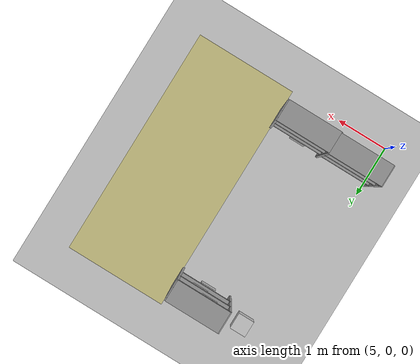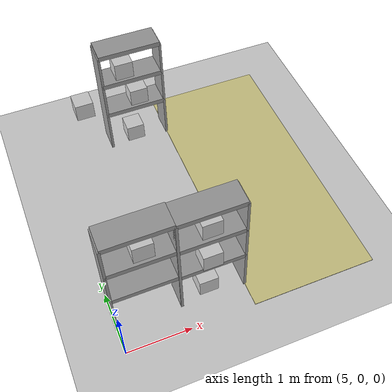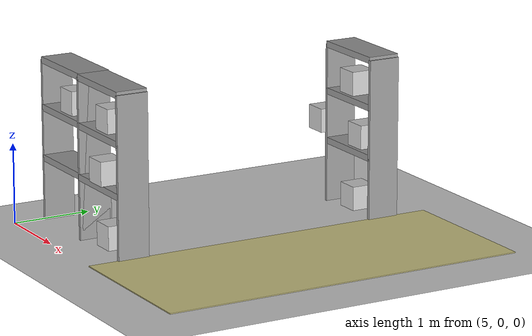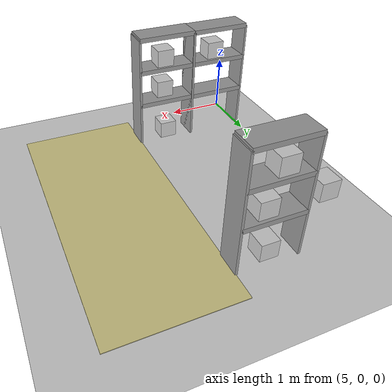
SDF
<sdf version="1.7">
 <world name="default">
  <model name="ground_plane">
   <static>1</static>
   <link name="link">
    <collision name="collision">
     <geometry><plane><normal>0 0 1</normal><size>100 100</size></plane></geometry>
     <surface>
      <contact><collide_bitmask>65535</collide_bitmask></contact>
      <friction><ode><mu>100</mu><mu2>50</mu2></ode></friction>
     </surface>
    </collision>
    <visual name="visual">
     <cast_shadows>0</cast_shadows>
     <geometry><plane><normal>0 0 1</normal><size>100 100</size></plane></geometry>
     <material>
      <script><uri>file://media/materials/scripts/gazebo.material</uri><name>Gazebo/Grey</name></script>
     </material>
    </visual>
   </link>
  </model>
  <model name="Shelf_2_clone">
   <static>1</static>
   <link name="link_3">
    <inertial>
     <mass>1</mass>
     <inertia>
      <ixx>0.166667</ixx>
      <ixy>0</ixy>
      <ixz>0</ixz>
      <iyy>0.166667</iyy>
      <iyz>0</iyz>
      <izz>0.166667</izz>
     </inertia>
    </inertial>
    <pose>-0.5 0 -0.238 0 -0 0</pose>
    <visual name="visual">
     <geometry><box><size>0.04 0.4 2</size></box></geometry>
     <material>
      <lighting>1</lighting>
      <script><uri>file://media/materials/scripts/gazebo.material</uri><name>Gazebo/Grey</name></script>
      <shader type="pixel"><normal_map>__default__</normal_map></shader>
      <ambient>0.3 0.3 0.3 1</ambient>
      <diffuse>0.7 0.7 0.7 1</diffuse>
      <specular>0.01 0.01 0.01 1</specular>
      <emissive>0 0 0 1</emissive>
     </material>
    </visual>
    <collision name="collision">
     <geometry><box><size>0.04 0.4 2</size></box></geometry>
     <surface>
      <friction>
       <ode><mu>1</mu><mu2>1</mu2><fdir1>0 0 0</fdir1><slip1>0</slip1><slip2>0</slip2></ode>
       <torsional>
        <coefficient>1</coefficient>
        <patch_radius>0</patch_radius>
        <surface_radius>0</surface_radius>
        <use_patch_radius>1</use_patch_radius>
        <ode><slip>0</slip></ode>
       </torsional>
      </friction>
      <bounce><restitution_coefficient>0</restitution_coefficient><threshold>1e+06</threshold></bounce>
      <contact>
       <collide_without_contact>0</collide_without_contact>
       <collide_without_contact_bitmask>1</collide_without_contact_bitmask>
       <collide_bitmask>1</collide_bitmask>
       <ode>
        <soft_cfm>0</soft_cfm>
        <soft_erp>0.2</soft_erp>
        <kp>1e+13</kp>
        <kd>1</kd>
        <max_vel>0.01</max_vel>
        <min_depth>0</min_depth>
       </ode>
       <bullet>
        <split_impulse>1</split_impulse>
        <split_impulse_penetration_threshold>-0.01</split_impulse_penetration_threshold>
        <soft_cfm>0</soft_cfm>
        <soft_erp>0.2</soft_erp>
        <kp>1e+13</kp>
        <kd>1</kd>
       </bullet>
      </contact>
     </surface>
    </collision>
   </link>
   <link name="link_3_clone">
    <inertial>
     <mass>1</mass>
     <inertia>
      <ixx>0.166667</ixx>
      <ixy>0</ixy>
      <ixz>0</ixz>
      <iyy>0.166667</iyy>
      <iyz>0</iyz>
      <izz>0.166667</izz>
     </inertia>
    </inertial>
    <pose>0.5 0 -0.238 0 -0 0</pose>
    <visual name="visual">
     <geometry><box><size>0.04 0.4 2</size></box></geometry>
     <material>
      <lighting>1</lighting>
      <script><uri>file://media/materials/scripts/gazebo.material</uri><name>Gazebo/Grey</name></script>
      <shader type="pixel"><normal_map>__default__</normal_map></shader>
      <ambient>0.3 0.3 0.3 1</ambient>
      <diffuse>0.7 0.7 0.7 1</diffuse>
      <specular>0.01 0.01 0.01 1</specular>
      <emissive>0 0 0 1</emissive>
     </material>
    </visual>
    <collision name="collision">
     <geometry><box><size>0.04 0.4 2</size></box></geometry>
     <surface>
      <friction>
       <ode><mu>1</mu><mu2>1</mu2><fdir1>0 0 0</fdir1><slip1>0</slip1><slip2>0</slip2></ode>
       <torsional>
        <coefficient>1</coefficient>
        <patch_radius>0</patch_radius>
        <surface_radius>0</surface_radius>
        <use_patch_radius>1</use_patch_radius>
        <ode><slip>0</slip></ode>
       </torsional>
      </friction>
      <bounce><restitution_coefficient>0</restitution_coefficient><threshold>1e+06</threshold></bounce>
      <contact>
       <collide_without_contact>0</collide_without_contact>
       <collide_without_contact_bitmask>1</collide_without_contact_bitmask>
       <collide_bitmask>1</collide_bitmask>
       <ode>
        <soft_cfm>0</soft_cfm>
        <soft_erp>0.2</soft_erp>
        <kp>1e+13</kp>
        <kd>1</kd>
        <max_vel>0.01</max_vel>
        <min_depth>0</min_depth>
       </ode>
       <bullet>
        <split_impulse>1</split_impulse>
        <split_impulse_penetration_threshold>-0.01</split_impulse_penetration_threshold>
        <soft_cfm>0</soft_cfm>
        <soft_erp>0.2</soft_erp>
        <kp>1e+13</kp>
        <kd>1</kd>
       </bullet>
      </contact>
     </surface>
    </collision>
   </link>
   <link name="link_4">
    <inertial>
     <mass>1</mass>
     <inertia>
      <ixx>0.166667</ixx>
      <ixy>0</ixy>
      <ixz>0</ixz>
      <iyy>0.166667</iyy>
      <iyz>0</iyz>
      <izz>0.166667</izz>
     </inertia>
    </inertial>
    <pose>0 0 -0.458 0 -0 0</pose>
    <visual name="visual">
     <geometry><box><size>1 0.4 0.08</size></box></geometry>
     <material>
      <lighting>1</lighting>
      <script><uri>file://media/materials/scripts/gazebo.material</uri><name>Gazebo/Grey</name></script>
      <shader type="pixel"><normal_map>__default__</normal_map></shader>
      <ambient>0.3 0.3 0.3 1</ambient>
      <diffuse>0.7 0.7 0.7 1</diffuse>
      <specular>0.01 0.01 0.01 1</specular>
      <emissive>0 0 0 1</emissive>
     </material>
    </visual>
    <collision name="collision">
     <geometry><box><size>1 0.4 0.08</size></box></geometry>
     <surface>
      <friction>
       <ode><mu>1</mu><mu2>1</mu2><fdir1>0 0 0</fdir1><slip1>0</slip1><slip2>0</slip2></ode>
       <torsional>
        <coefficient>1</coefficient>
        <patch_radius>0</patch_radius>
        <surface_radius>0</surface_radius>
        <use_patch_radius>1</use_patch_radius>
        <ode><slip>0</slip></ode>
       </torsional>
      </friction>
      <bounce><restitution_coefficient>0</restitution_coefficient><threshold>1e+06</threshold></bounce>
      <contact>
       <collide_without_contact>0</collide_without_contact>
       <collide_without_contact_bitmask>1</collide_without_contact_bitmask>
       <collide_bitmask>1</collide_bitmask>
       <ode>
        <soft_cfm>0</soft_cfm>
        <soft_erp>0.2</soft_erp>
        <kp>1e+13</kp>
        <kd>1</kd>
        <max_vel>0.01</max_vel>
        <min_depth>0</min_depth>
       </ode>
       <bullet>
        <split_impulse>1</split_impulse>
        <split_impulse_penetration_threshold>-0.01</split_impulse_penetration_threshold>
        <soft_cfm>0</soft_cfm>
        <soft_erp>0.2</soft_erp>
        <kp>1e+13</kp>
        <kd>1</kd>
       </bullet>
      </contact>
     </surface>
    </collision>
   </link>
   <link name="link_4_clone">
    <inertial>
     <mass>1</mass>
     <inertia>
      <ixx>0.166667</ixx>
      <ixy>0</ixy>
      <ixz>0</ixz>
      <iyy>0.166667</iyy>
      <iyz>0</iyz>
      <izz>0.166667</izz>
     </inertia>
    </inertial>
    <pose>0 0 0.172 0 -0 0</pose>
    <visual name="visual">
     <geometry><box><size>1 0.4 0.08</size></box></geometry>
     <material>
      <lighting>1</lighting>
      <script><uri>file://media/materials/scripts/gazebo.material</uri><name>Gazebo/Grey</name></script>
      <shader type="pixel"><normal_map>__default__</normal_map></shader>
      <ambient>0.3 0.3 0.3 1</ambient>
      <diffuse>0.7 0.7 0.7 1</diffuse>
      <specular>0.01 0.01 0.01 1</specular>
      <emissive>0 0 0 1</emissive>
     </material>
    </visual>
    <collision name="collision">
     <geometry><box><size>1 0.4 0.08</size></box></geometry>
     <surface>
      <friction>
       <ode><mu>1</mu><mu2>1</mu2><fdir1>0 0 0</fdir1><slip1>0</slip1><slip2>0</slip2></ode>
       <torsional>
        <coefficient>1</coefficient>
        <patch_radius>0</patch_radius>
        <surface_radius>0</surface_radius>
        <use_patch_radius>1</use_patch_radius>
        <ode><slip>0</slip></ode>
       </torsional>
      </friction>
      <bounce><restitution_coefficient>0</restitution_coefficient><threshold>1e+06</threshold></bounce>
      <contact>
       <collide_without_contact>0</collide_without_contact>
       <collide_without_contact_bitmask>1</collide_without_contact_bitmask>
       <collide_bitmask>1</collide_bitmask>
       <ode>
        <soft_cfm>0</soft_cfm>
        <soft_erp>0.2</soft_erp>
        <kp>1e+13</kp>
        <kd>1</kd>
        <max_vel>0.01</max_vel>
        <min_depth>0</min_depth>
       </ode>
       <bullet>
        <split_impulse>1</split_impulse>
        <split_impulse_penetration_threshold>-0.01</split_impulse_penetration_threshold>
        <soft_cfm>0</soft_cfm>
        <soft_erp>0.2</soft_erp>
        <kp>1e+13</kp>
        <kd>1</kd>
       </bullet>
      </contact>
     </surface>
    </collision>
   </link>
   <link name="link_4_clone_clone">
    <inertial>
     <mass>1</mass>
     <inertia>
      <ixx>0.166667</ixx>
      <ixy>0</ixy>
      <ixz>0</ixz>
      <iyy>0.166667</iyy>
      <iyz>0</iyz>
      <izz>0.166667</izz>
     </inertia>
    </inertial>
    <pose>0 0 0.762 0 -0 0</pose>
    <visual name="visual">
     <geometry><box><size>1 0.4 0.08</size></box></geometry>
     <material>
      <lighting>1</lighting>
      <script><uri>file://media/materials/scripts/gazebo.material</uri><name>Gazebo/Grey</name></script>
      <shader type="pixel"><normal_map>__default__</normal_map></shader>
      <ambient>0.3 0.3 0.3 1</ambient>
      <diffuse>0.7 0.7 0.7 1</diffuse>
      <specular>0.01 0.01 0.01 1</specular>
      <emissive>0 0 0 1</emissive>
     </material>
    </visual>
    <collision name="collision">
     <geometry><box><size>1 0.4 0.08</size></box></geometry>
     <surface>
      <friction>
       <ode><mu>1</mu><mu2>1</mu2><fdir1>0 0 0</fdir1><slip1>0</slip1><slip2>0</slip2></ode>
       <torsional>
        <coefficient>1</coefficient>
        <patch_radius>0</patch_radius>
        <surface_radius>0</surface_radius>
        <use_patch_radius>1</use_patch_radius>
        <ode><slip>0</slip></ode>
       </torsional>
      </friction>
      <bounce><restitution_coefficient>0</restitution_coefficient><threshold>1e+06</threshold></bounce>
      <contact>
       <collide_without_contact>0</collide_without_contact>
       <collide_without_contact_bitmask>1</collide_without_contact_bitmask>
       <collide_bitmask>1</collide_bitmask>
       <ode>
        <soft_cfm>0</soft_cfm>
        <soft_erp>0.2</soft_erp>
        <kp>1e+13</kp>
        <kd>1</kd>
        <max_vel>0.01</max_vel>
        <min_depth>0</min_depth>
       </ode>
       <bullet>
        <split_impulse>1</split_impulse>
        <split_impulse_penetration_threshold>-0.01</split_impulse_penetration_threshold>
        <soft_cfm>0</soft_cfm>
        <soft_erp>0.2</soft_erp>
        <kp>1e+13</kp>
        <kd>1</kd>
       </bullet>
      </contact>
     </surface>
    </collision>
   </link>
   <static>0</static>
   <pose>6.5 4 1.23 0 -0 0</pose>
  </model>
  <model name="Shelf_2_clone_0">
   <static>1</static>
   <link name="link_3">
    <inertial>
     <mass>1</mass>
     <inertia>
      <ixx>0.166667</ixx>
      <ixy>0</ixy>
      <ixz>0</ixz>
      <iyy>0.166667</iyy>
      <iyz>0</iyz>
      <izz>0.166667</izz>
     </inertia>
    </inertial>
    <pose>-0.5 0 -0.238 0 -0 0</pose>
    <visual name="visual">
     <geometry><box><size>0.04 0.4 2</size></box></geometry>
     <material>
      <lighting>1</lighting>
      <script><uri>file://media/materials/scripts/gazebo.material</uri><name>Gazebo/Grey</name></script>
      <shader type="pixel"><normal_map>__default__</normal_map></shader>
      <ambient>0.3 0.3 0.3 1</ambient>
      <diffuse>0.7 0.7 0.7 1</diffuse>
      <specular>0.01 0.01 0.01 1</specular>
      <emissive>0 0 0 1</emissive>
     </material>
    </visual>
    <collision name="collision">
     <geometry><box><size>0.04 0.4 2</size></box></geometry>
     <surface>
      <friction>
       <ode><mu>1</mu><mu2>1</mu2><fdir1>0 0 0</fdir1><slip1>0</slip1><slip2>0</slip2></ode>
       <torsional>
        <coefficient>1</coefficient>
        <patch_radius>0</patch_radius>
        <surface_radius>0</surface_radius>
        <use_patch_radius>1</use_patch_radius>
        <ode><slip>0</slip></ode>
       </torsional>
      </friction>
      <bounce><restitution_coefficient>0</restitution_coefficient><threshold>1e+06</threshold></bounce>
      <contact>
       <collide_without_contact>0</collide_without_contact>
       <collide_without_contact_bitmask>1</collide_without_contact_bitmask>
       <collide_bitmask>1</collide_bitmask>
       <ode>
        <soft_cfm>0</soft_cfm>
        <soft_erp>0.2</soft_erp>
        <kp>1e+13</kp>
        <kd>1</kd>
        <max_vel>0.01</max_vel>
        <min_depth>0</min_depth>
       </ode>
       <bullet>
        <split_impulse>1</split_impulse>
        <split_impulse_penetration_threshold>-0.01</split_impulse_penetration_threshold>
        <soft_cfm>0</soft_cfm>
        <soft_erp>0.2</soft_erp>
        <kp>1e+13</kp>
        <kd>1</kd>
       </bullet>
      </contact>
     </surface>
    </collision>
   </link>
   <link name="link_3_clone">
    <inertial>
     <mass>1</mass>
     <inertia>
      <ixx>0.166667</ixx>
      <ixy>0</ixy>
      <ixz>0</ixz>
      <iyy>0.166667</iyy>
      <iyz>0</iyz>
      <izz>0.166667</izz>
     </inertia>
    </inertial>
    <pose>0.5 0 -0.238 0 -0 0</pose>
    <visual name="visual">
     <geometry><box><size>0.04 0.4 2</size></box></geometry>
     <material>
      <lighting>1</lighting>
      <script><uri>file://media/materials/scripts/gazebo.material</uri><name>Gazebo/Grey</name></script>
      <shader type="pixel"><normal_map>__default__</normal_map></shader>
      <ambient>0.3 0.3 0.3 1</ambient>
      <diffuse>0.7 0.7 0.7 1</diffuse>
      <specular>0.01 0.01 0.01 1</specular>
      <emissive>0 0 0 1</emissive>
     </material>
    </visual>
    <collision name="collision">
     <geometry><box><size>0.04 0.4 2</size></box></geometry>
     <surface>
      <friction>
       <ode><mu>1</mu><mu2>1</mu2><fdir1>0 0 0</fdir1><slip1>0</slip1><slip2>0</slip2></ode>
       <torsional>
        <coefficient>1</coefficient>
        <patch_radius>0</patch_radius>
        <surface_radius>0</surface_radius>
        <use_patch_radius>1</use_patch_radius>
        <ode><slip>0</slip></ode>
       </torsional>
      </friction>
      <bounce><restitution_coefficient>0</restitution_coefficient><threshold>1e+06</threshold></bounce>
      <contact>
       <collide_without_contact>0</collide_without_contact>
       <collide_without_contact_bitmask>1</collide_without_contact_bitmask>
       <collide_bitmask>1</collide_bitmask>
       <ode>
        <soft_cfm>0</soft_cfm>
        <soft_erp>0.2</soft_erp>
        <kp>1e+13</kp>
        <kd>1</kd>
        <max_vel>0.01</max_vel>
        <min_depth>0</min_depth>
       </ode>
       <bullet>
        <split_impulse>1</split_impulse>
        <split_impulse_penetration_threshold>-0.01</split_impulse_penetration_threshold>
        <soft_cfm>0</soft_cfm>
        <soft_erp>0.2</soft_erp>
        <kp>1e+13</kp>
        <kd>1</kd>
       </bullet>
      </contact>
     </surface>
    </collision>
   </link>
   <link name="link_4">
    <inertial>
     <mass>1</mass>
     <inertia>
      <ixx>0.166667</ixx>
      <ixy>0</ixy>
      <ixz>0</ixz>
      <iyy>0.166667</iyy>
      <iyz>0</iyz>
      <izz>0.166667</izz>
     </inertia>
    </inertial>
    <pose>0 0 -0.458 0 -0 0</pose>
    <visual name="visual">
     <geometry><box><size>1 0.4 0.08</size></box></geometry>
     <material>
      <lighting>1</lighting>
      <script><uri>file://media/materials/scripts/gazebo.material</uri><name>Gazebo/Grey</name></script>
      <shader type="pixel"><normal_map>__default__</normal_map></shader>
      <ambient>0.3 0.3 0.3 1</ambient>
      <diffuse>0.7 0.7 0.7 1</diffuse>
      <specular>0.01 0.01 0.01 1</specular>
      <emissive>0 0 0 1</emissive>
     </material>
    </visual>
    <collision name="collision">
     <geometry><box><size>1 0.4 0.08</size></box></geometry>
     <surface>
      <friction>
       <ode><mu>1</mu><mu2>1</mu2><fdir1>0 0 0</fdir1><slip1>0</slip1><slip2>0</slip2></ode>
       <torsional>
        <coefficient>1</coefficient>
        <patch_radius>0</patch_radius>
        <surface_radius>0</surface_radius>
        <use_patch_radius>1</use_patch_radius>
        <ode><slip>0</slip></ode>
       </torsional>
      </friction>
      <bounce><restitution_coefficient>0</restitution_coefficient><threshold>1e+06</threshold></bounce>
      <contact>
       <collide_without_contact>0</collide_without_contact>
       <collide_without_contact_bitmask>1</collide_without_contact_bitmask>
       <collide_bitmask>1</collide_bitmask>
       <ode>
        <soft_cfm>0</soft_cfm>
        <soft_erp>0.2</soft_erp>
        <kp>1e+13</kp>
        <kd>1</kd>
        <max_vel>0.01</max_vel>
        <min_depth>0</min_depth>
       </ode>
       <bullet>
        <split_impulse>1</split_impulse>
        <split_impulse_penetration_threshold>-0.01</split_impulse_penetration_threshold>
        <soft_cfm>0</soft_cfm>
        <soft_erp>0.2</soft_erp>
        <kp>1e+13</kp>
        <kd>1</kd>
       </bullet>
      </contact>
     </surface>
    </collision>
   </link>
   <link name="link_4_clone">
    <inertial>
     <mass>1</mass>
     <inertia>
      <ixx>0.166667</ixx>
      <ixy>0</ixy>
      <ixz>0</ixz>
      <iyy>0.166667</iyy>
      <iyz>0</iyz>
      <izz>0.166667</izz>
     </inertia>
    </inertial>
    <pose>0 0 0.172 0 -0 0</pose>
    <visual name="visual">
     <geometry><box><size>1 0.4 0.08</size></box></geometry>
     <material>
      <lighting>1</lighting>
      <script><uri>file://media/materials/scripts/gazebo.material</uri><name>Gazebo/Grey</name></script>
      <shader type="pixel"><normal_map>__default__</normal_map></shader>
      <ambient>0.3 0.3 0.3 1</ambient>
      <diffuse>0.7 0.7 0.7 1</diffuse>
      <specular>0.01 0.01 0.01 1</specular>
      <emissive>0 0 0 1</emissive>
     </material>
    </visual>
    <collision name="collision">
     <geometry><box><size>1 0.4 0.08</size></box></geometry>
     <surface>
      <friction>
       <ode><mu>1</mu><mu2>1</mu2><fdir1>0 0 0</fdir1><slip1>0</slip1><slip2>0</slip2></ode>
       <torsional>
        <coefficient>1</coefficient>
        <patch_radius>0</patch_radius>
        <surface_radius>0</surface_radius>
        <use_patch_radius>1</use_patch_radius>
        <ode><slip>0</slip></ode>
       </torsional>
      </friction>
      <bounce><restitution_coefficient>0</restitution_coefficient><threshold>1e+06</threshold></bounce>
      <contact>
       <collide_without_contact>0</collide_without_contact>
       <collide_without_contact_bitmask>1</collide_without_contact_bitmask>
       <collide_bitmask>1</collide_bitmask>
       <ode>
        <soft_cfm>0</soft_cfm>
        <soft_erp>0.2</soft_erp>
        <kp>1e+13</kp>
        <kd>1</kd>
        <max_vel>0.01</max_vel>
        <min_depth>0</min_depth>
       </ode>
       <bullet>
        <split_impulse>1</split_impulse>
        <split_impulse_penetration_threshold>-0.01</split_impulse_penetration_threshold>
        <soft_cfm>0</soft_cfm>
        <soft_erp>0.2</soft_erp>
        <kp>1e+13</kp>
        <kd>1</kd>
       </bullet>
      </contact>
     </surface>
    </collision>
   </link>
   <link name="link_4_clone_clone">
    <inertial>
     <mass>1</mass>
     <inertia>
      <ixx>0.166667</ixx>
      <ixy>0</ixy>
      <ixz>0</ixz>
      <iyy>0.166667</iyy>
      <iyz>0</iyz>
      <izz>0.166667</izz>
     </inertia>
    </inertial>
    <pose>0 0 0.762 0 -0 0</pose>
    <visual name="visual">
     <geometry><box><size>1 0.4 0.08</size></box></geometry>
     <material>
      <lighting>1</lighting>
      <script><uri>file://media/materials/scripts/gazebo.material</uri><name>Gazebo/Grey</name></script>
      <shader type="pixel"><normal_map>__default__</normal_map></shader>
      <ambient>0.3 0.3 0.3 1</ambient>
      <diffuse>0.7 0.7 0.7 1</diffuse>
      <specular>0.01 0.01 0.01 1</specular>
      <emissive>0 0 0 1</emissive>
     </material>
    </visual>
    <collision name="collision">
     <geometry><box><size>1 0.4 0.08</size></box></geometry>
     <surface>
      <friction>
       <ode><mu>1</mu><mu2>1</mu2><fdir1>0 0 0</fdir1><slip1>0</slip1><slip2>0</slip2></ode>
       <torsional>
        <coefficient>1</coefficient>
        <patch_radius>0</patch_radius>
        <surface_radius>0</surface_radius>
        <use_patch_radius>1</use_patch_radius>
        <ode><slip>0</slip></ode>
       </torsional>
      </friction>
      <bounce><restitution_coefficient>0</restitution_coefficient><threshold>1e+06</threshold></bounce>
      <contact>
       <collide_without_contact>0</collide_without_contact>
       <collide_without_contact_bitmask>1</collide_without_contact_bitmask>
       <collide_bitmask>1</collide_bitmask>
       <ode>
        <soft_cfm>0</soft_cfm>
        <soft_erp>0.2</soft_erp>
        <kp>1e+13</kp>
        <kd>1</kd>
        <max_vel>0.01</max_vel>
        <min_depth>0</min_depth>
       </ode>
       <bullet>
        <split_impulse>1</split_impulse>
        <split_impulse_penetration_threshold>-0.01</split_impulse_penetration_threshold>
        <soft_cfm>0</soft_cfm>
        <soft_erp>0.2</soft_erp>
        <kp>1e+13</kp>
        <kd>1</kd>
       </bullet>
      </contact>
     </surface>
    </collision>
   </link>
   <static>0</static>
   <pose>5.5 0.6 1.23 0 -0 0</pose>
  </model>
  <model name="Shelf_2_clone_0_clone">
   <static>1</static>
   <link name="link_3">
    <inertial>
     <mass>1</mass>
     <inertia>
      <ixx>0.166667</ixx>
      <ixy>0</ixy>
      <ixz>0</ixz>
      <iyy>0.166667</iyy>
      <iyz>0</iyz>
      <izz>0.166667</izz>
     </inertia>
    </inertial>
    <pose>-0.5 0 -0.238 0 -0 0</pose>
    <visual name="visual">
     <geometry><box><size>0.04 0.4 2</size></box></geometry>
     <material>
      <lighting>1</lighting>
      <script><uri>file://media/materials/scripts/gazebo.material</uri><name>Gazebo/Grey</name></script>
      <shader type="pixel"><normal_map>__default__</normal_map></shader>
      <ambient>0.3 0.3 0.3 1</ambient>
      <diffuse>0.7 0.7 0.7 1</diffuse>
      <specular>0.01 0.01 0.01 1</specular>
      <emissive>0 0 0 1</emissive>
     </material>
    </visual>
    <collision name="collision">
     <geometry><box><size>0.04 0.4 2</size></box></geometry>
     <surface>
      <friction>
       <ode><mu>1</mu><mu2>1</mu2><fdir1>0 0 0</fdir1><slip1>0</slip1><slip2>0</slip2></ode>
       <torsional>
        <coefficient>1</coefficient>
        <patch_radius>0</patch_radius>
        <surface_radius>0</surface_radius>
        <use_patch_radius>1</use_patch_radius>
        <ode><slip>0</slip></ode>
       </torsional>
      </friction>
      <bounce><restitution_coefficient>0</restitution_coefficient><threshold>1e+06</threshold></bounce>
      <contact>
       <collide_without_contact>0</collide_without_contact>
       <collide_without_contact_bitmask>1</collide_without_contact_bitmask>
       <collide_bitmask>1</collide_bitmask>
       <ode>
        <soft_cfm>0</soft_cfm>
        <soft_erp>0.2</soft_erp>
        <kp>1e+13</kp>
        <kd>1</kd>
        <max_vel>0.01</max_vel>
        <min_depth>0</min_depth>
       </ode>
       <bullet>
        <split_impulse>1</split_impulse>
        <split_impulse_penetration_threshold>-0.01</split_impulse_penetration_threshold>
        <soft_cfm>0</soft_cfm>
        <soft_erp>0.2</soft_erp>
        <kp>1e+13</kp>
        <kd>1</kd>
       </bullet>
      </contact>
     </surface>
    </collision>
   </link>
   <link name="link_3_clone">
    <inertial>
     <mass>1</mass>
     <inertia>
      <ixx>0.166667</ixx>
      <ixy>0</ixy>
      <ixz>0</ixz>
      <iyy>0.166667</iyy>
      <iyz>0</iyz>
      <izz>0.166667</izz>
     </inertia>
    </inertial>
    <pose>0.5 0 -0.238 0 -0 0</pose>
    <visual name="visual">
     <geometry><box><size>0.04 0.4 2</size></box></geometry>
     <material>
      <lighting>1</lighting>
      <script><uri>file://media/materials/scripts/gazebo.material</uri><name>Gazebo/Grey</name></script>
      <shader type="pixel"><normal_map>__default__</normal_map></shader>
      <ambient>0.3 0.3 0.3 1</ambient>
      <diffuse>0.7 0.7 0.7 1</diffuse>
      <specular>0.01 0.01 0.01 1</specular>
      <emissive>0 0 0 1</emissive>
     </material>
    </visual>
    <collision name="collision">
     <geometry><box><size>0.04 0.4 2</size></box></geometry>
     <surface>
      <friction>
       <ode><mu>1</mu><mu2>1</mu2><fdir1>0 0 0</fdir1><slip1>0</slip1><slip2>0</slip2></ode>
       <torsional>
        <coefficient>1</coefficient>
        <patch_radius>0</patch_radius>
        <surface_radius>0</surface_radius>
        <use_patch_radius>1</use_patch_radius>
        <ode><slip>0</slip></ode>
       </torsional>
      </friction>
      <bounce><restitution_coefficient>0</restitution_coefficient><threshold>1e+06</threshold></bounce>
      <contact>
       <collide_without_contact>0</collide_without_contact>
       <collide_without_contact_bitmask>1</collide_without_contact_bitmask>
       <collide_bitmask>1</collide_bitmask>
       <ode>
        <soft_cfm>0</soft_cfm>
        <soft_erp>0.2</soft_erp>
        <kp>1e+13</kp>
        <kd>1</kd>
        <max_vel>0.01</max_vel>
        <min_depth>0</min_depth>
       </ode>
       <bullet>
        <split_impulse>1</split_impulse>
        <split_impulse_penetration_threshold>-0.01</split_impulse_penetration_threshold>
        <soft_cfm>0</soft_cfm>
        <soft_erp>0.2</soft_erp>
        <kp>1e+13</kp>
        <kd>1</kd>
       </bullet>
      </contact>
     </surface>
    </collision>
   </link>
   <link name="link_4">
    <inertial>
     <mass>1</mass>
     <inertia>
      <ixx>0.166667</ixx>
      <ixy>0</ixy>
      <ixz>0</ixz>
      <iyy>0.166667</iyy>
      <iyz>0</iyz>
      <izz>0.166667</izz>
     </inertia>
    </inertial>
    <pose>0 0 -0.458 0 -0 0</pose>
    <visual name="visual">
     <geometry><box><size>1 0.4 0.08</size></box></geometry>
     <material>
      <lighting>1</lighting>
      <script><uri>file://media/materials/scripts/gazebo.material</uri><name>Gazebo/Grey</name></script>
      <shader type="pixel"><normal_map>__default__</normal_map></shader>
      <ambient>0.3 0.3 0.3 1</ambient>
      <diffuse>0.7 0.7 0.7 1</diffuse>
      <specular>0.01 0.01 0.01 1</specular>
      <emissive>0 0 0 1</emissive>
     </material>
    </visual>
    <collision name="collision">
     <geometry><box><size>1 0.4 0.08</size></box></geometry>
     <surface>
      <friction>
       <ode><mu>1</mu><mu2>1</mu2><fdir1>0 0 0</fdir1><slip1>0</slip1><slip2>0</slip2></ode>
       <torsional>
        <coefficient>1</coefficient>
        <patch_radius>0</patch_radius>
        <surface_radius>0</surface_radius>
        <use_patch_radius>1</use_patch_radius>
        <ode><slip>0</slip></ode>
       </torsional>
      </friction>
      <bounce><restitution_coefficient>0</restitution_coefficient><threshold>1e+06</threshold></bounce>
      <contact>
       <collide_without_contact>0</collide_without_contact>
       <collide_without_contact_bitmask>1</collide_without_contact_bitmask>
       <collide_bitmask>1</collide_bitmask>
       <ode>
        <soft_cfm>0</soft_cfm>
        <soft_erp>0.2</soft_erp>
        <kp>1e+13</kp>
        <kd>1</kd>
        <max_vel>0.01</max_vel>
        <min_depth>0</min_depth>
       </ode>
       <bullet>
        <split_impulse>1</split_impulse>
        <split_impulse_penetration_threshold>-0.01</split_impulse_penetration_threshold>
        <soft_cfm>0</soft_cfm>
        <soft_erp>0.2</soft_erp>
        <kp>1e+13</kp>
        <kd>1</kd>
       </bullet>
      </contact>
     </surface>
    </collision>
   </link>
   <link name="link_4_clone">
    <inertial>
     <mass>1</mass>
     <inertia>
      <ixx>0.166667</ixx>
      <ixy>0</ixy>
      <ixz>0</ixz>
      <iyy>0.166667</iyy>
      <iyz>0</iyz>
      <izz>0.166667</izz>
     </inertia>
    </inertial>
    <pose>0 0 0.172 0 -0 0</pose>
    <visual name="visual">
     <geometry><box><size>1 0.4 0.08</size></box></geometry>
     <material>
      <lighting>1</lighting>
      <script><uri>file://media/materials/scripts/gazebo.material</uri><name>Gazebo/Grey</name></script>
      <shader type="pixel"><normal_map>__default__</normal_map></shader>
      <ambient>0.3 0.3 0.3 1</ambient>
      <diffuse>0.7 0.7 0.7 1</diffuse>
      <specular>0.01 0.01 0.01 1</specular>
      <emissive>0 0 0 1</emissive>
     </material>
    </visual>
    <collision name="collision">
     <geometry><box><size>1 0.4 0.08</size></box></geometry>
     <surface>
      <friction>
       <ode><mu>1</mu><mu2>1</mu2><fdir1>0 0 0</fdir1><slip1>0</slip1><slip2>0</slip2></ode>
       <torsional>
        <coefficient>1</coefficient>
        <patch_radius>0</patch_radius>
        <surface_radius>0</surface_radius>
        <use_patch_radius>1</use_patch_radius>
        <ode><slip>0</slip></ode>
       </torsional>
      </friction>
      <bounce><restitution_coefficient>0</restitution_coefficient><threshold>1e+06</threshold></bounce>
      <contact>
       <collide_without_contact>0</collide_without_contact>
       <collide_without_contact_bitmask>1</collide_without_contact_bitmask>
       <collide_bitmask>1</collide_bitmask>
       <ode>
        <soft_cfm>0</soft_cfm>
        <soft_erp>0.2</soft_erp>
        <kp>1e+13</kp>
        <kd>1</kd>
        <max_vel>0.01</max_vel>
        <min_depth>0</min_depth>
       </ode>
       <bullet>
        <split_impulse>1</split_impulse>
        <split_impulse_penetration_threshold>-0.01</split_impulse_penetration_threshold>
        <soft_cfm>0</soft_cfm>
        <soft_erp>0.2</soft_erp>
        <kp>1e+13</kp>
        <kd>1</kd>
       </bullet>
      </contact>
     </surface>
    </collision>
   </link>
   <link name="link_4_clone_clone">
    <inertial>
     <mass>1</mass>
     <inertia>
      <ixx>0.166667</ixx>
      <ixy>0</ixy>
      <ixz>0</ixz>
      <iyy>0.166667</iyy>
      <iyz>0</iyz>
      <izz>0.166667</izz>
     </inertia>
    </inertial>
    <pose>0 0 0.762 0 -0 0</pose>
    <visual name="visual">
     <geometry><box><size>1 0.4 0.08</size></box></geometry>
     <material>
      <lighting>1</lighting>
      <script><uri>file://media/materials/scripts/gazebo.material</uri><name>Gazebo/Grey</name></script>
      <shader type="pixel"><normal_map>__default__</normal_map></shader>
      <ambient>0.3 0.3 0.3 1</ambient>
      <diffuse>0.7 0.7 0.7 1</diffuse>
      <specular>0.01 0.01 0.01 1</specular>
      <emissive>0 0 0 1</emissive>
     </material>
    </visual>
    <collision name="collision">
     <geometry><box><size>1 0.4 0.08</size></box></geometry>
     <surface>
      <friction>
       <ode><mu>1</mu><mu2>1</mu2><fdir1>0 0 0</fdir1><slip1>0</slip1><slip2>0</slip2></ode>
       <torsional>
        <coefficient>1</coefficient>
        <patch_radius>0</patch_radius>
        <surface_radius>0</surface_radius>
        <use_patch_radius>1</use_patch_radius>
        <ode><slip>0</slip></ode>
       </torsional>
      </friction>
      <bounce><restitution_coefficient>0</restitution_coefficient><threshold>1e+06</threshold></bounce>
      <contact>
       <collide_without_contact>0</collide_without_contact>
       <collide_without_contact_bitmask>1</collide_without_contact_bitmask>
       <collide_bitmask>1</collide_bitmask>
       <ode>
        <soft_cfm>0</soft_cfm>
        <soft_erp>0.2</soft_erp>
        <kp>1e+13</kp>
        <kd>1</kd>
        <max_vel>0.01</max_vel>
        <min_depth>0</min_depth>
       </ode>
       <bullet>
        <split_impulse>1</split_impulse>
        <split_impulse_penetration_threshold>-0.01</split_impulse_penetration_threshold>
        <soft_cfm>0</soft_cfm>
        <soft_erp>0.2</soft_erp>
        <kp>1e+13</kp>
        <kd>1</kd>
       </bullet>
      </contact>
     </surface>
    </collision>
   </link>
   <static>0</static>
   <pose>6.5 0.582831 1.23 0 -0 0</pose>
  </model>
  <model name="ground_yellow">
   <link name="link">
    <inertial>
     <mass>1</mass>
     <inertia>
      <ixx>0.166667</ixx>
      <ixy>0</ixy>
      <ixz>0</ixz>
      <iyy>0.166667</iyy>
      <iyz>0</iyz>
      <izz>0.166667</izz>
     </inertia>
    </inertial>
    <visual name="visual">
     <geometry><box><size>2 4.6 0.02</size></box></geometry>
     <material>
      <shader type="pixel"><normal_map>__default__</normal_map></shader>
      <ambient>0.8 0.768 0.513 1</ambient>
      <diffuse>0.8 0.768 0.513 1</diffuse>
      <specular>0.01 0.01 0.01 1</specular>
      <emissive>0 0 0 1</emissive>
     </material>
    </visual>
    <collision name="collision">
     <geometry><box><size>2 4.6 0.02</size></box></geometry>
     <surface>
      <friction>
       <ode><mu>1</mu><mu2>1</mu2><fdir1>0 0 0</fdir1><slip1>0</slip1><slip2>0</slip2></ode>
       <torsional>
        <coefficient>1</coefficient>
        <patch_radius>0</patch_radius>
        <surface_radius>0</surface_radius>
        <use_patch_radius>1</use_patch_radius>
        <ode><slip>0</slip></ode>
       </torsional>
      </friction>
      <bounce><restitution_coefficient>0</restitution_coefficient><threshold>1e+06</threshold></bounce>
      <contact>
       <collide_without_contact>0</collide_without_contact>
       <collide_without_contact_bitmask>1</collide_without_contact_bitmask>
       <collide_bitmask>1</collide_bitmask>
       <ode>
        <soft_cfm>0</soft_cfm>
        <soft_erp>0.2</soft_erp>
        <kp>1e+13</kp>
        <kd>1</kd>
        <max_vel>0.01</max_vel>
        <min_depth>0</min_depth>
       </ode>
       <bullet>
        <split_impulse>1</split_impulse>
        <split_impulse_penetration_threshold>-0.01</split_impulse_penetration_threshold>
        <soft_cfm>0</soft_cfm>
        <soft_erp>0.2</soft_erp>
        <kp>1e+13</kp>
        <kd>1</kd>
       </bullet>
      </contact>
     </surface>
    </collision>
   </link>
   <static>1</static>
   <pose>8 2.3 -0.005 0 -0 0</pose>
  </model>
  <model name="box_1_7">
   <link name="link">
    <inertial>
     <mass>1</mass>
     <inertia>
      <ixx>0.166667</ixx>
      <ixy>0</ixy>
      <ixz>0</ixz>
      <iyy>0.166667</iyy>
      <iyz>0</iyz>
      <izz>0.166667</izz>
     </inertia>
    </inertial>
    <visual name="visual">
     <geometry><box><size>0.3 0.3 0.3</size></box></geometry>
     <material>
      <script>
       <uri>file://materials_user/scripts</uri>
       <uri>file://materials_user/textures</uri>
       <name>YMC/BoxBanana</name>
      </script>
      <shader type="pixel"><normal_map>__default__</normal_map></shader>
      <ambient>0.8 0.8 0.8 1</ambient>
      <diffuse>0.8 0.8 0.8 1</diffuse>
      <specular>0.5 0.5 0.5 1</specular>
      <emissive>0.5 0.5 0.5 1</emissive>
     </material>
    </visual>
    <collision name="collision">
     <geometry><box><size>0.3 0.3 0.3</size></box></geometry>
     <surface>
      <friction>
       <ode><mu>1</mu><mu2>1</mu2><fdir1>0 0 0</fdir1><slip1>0</slip1><slip2>0</slip2></ode>
       <torsional>
        <coefficient>1</coefficient>
        <patch_radius>0</patch_radius>
        <surface_radius>0</surface_radius>
        <use_patch_radius>1</use_patch_radius>
        <ode><slip>0</slip></ode>
       </torsional>
      </friction>
      <bounce><restitution_coefficient>0</restitution_coefficient><threshold>1e+06</threshold></bounce>
      <contact>
       <collide_without_contact>0</collide_without_contact>
       <collide_without_contact_bitmask>1</collide_without_contact_bitmask>
       <collide_bitmask>1</collide_bitmask>
       <ode>
        <soft_cfm>0</soft_cfm>
        <soft_erp>0.2</soft_erp>
        <kp>1e+13</kp>
        <kd>1</kd>
        <max_vel>0.01</max_vel>
        <min_depth>0</min_depth>
       </ode>
       <bullet>
        <split_impulse>1</split_impulse>
        <split_impulse_penetration_threshold>-0.01</split_impulse_penetration_threshold>
        <soft_cfm>0</soft_cfm>
        <soft_erp>0.2</soft_erp>
        <kp>1e+13</kp>
        <kd>1</kd>
       </bullet>
      </contact>
     </surface>
    </collision>
   </link>
   <static>0</static>
   <pose>5.64715 4 0.961994 -5e-06 3e-06 -2e-06</pose>
  </model>
  <model name="box_1_4">
   <link name="link">
    <inertial>
     <mass>1</mass>
     <inertia>
      <ixx>0.166667</ixx>
      <ixy>0</ixy>
      <ixz>0</ixz>
      <iyy>0.166667</iyy>
      <iyz>0</iyz>
      <izz>0.166667</izz>
     </inertia>
    </inertial>
    <visual name="visual">
     <geometry><box><size>0.3 0.3 0.3</size></box></geometry>
     <material>
      <script>
       <uri>file://materials_user/scripts</uri>
       <uri>file://materials_user/textures</uri>
       <name>YMC/BoxBanana</name>
      </script>
      <shader type="pixel"><normal_map>__default__</normal_map></shader>
      <ambient>0.8 0.8 0.8 1</ambient>
      <diffuse>0.8 0.8 0.8 1</diffuse>
      <specular>0.5 0.5 0.5 1</specular>
      <emissive>0.5 0.5 0.5 1</emissive>
     </material>
    </visual>
    <collision name="collision">
     <geometry><box><size>0.3 0.3 0.3</size></box></geometry>
     <surface>
      <friction>
       <ode><mu>1</mu><mu2>1</mu2><fdir1>0 0 0</fdir1><slip1>0</slip1><slip2>0</slip2></ode>
       <torsional>
        <coefficient>1</coefficient>
        <patch_radius>0</patch_radius>
        <surface_radius>0</surface_radius>
        <use_patch_radius>1</use_patch_radius>
        <ode><slip>0</slip></ode>
       </torsional>
      </friction>
      <bounce><restitution_coefficient>0</restitution_coefficient><threshold>1e+06</threshold></bounce>
      <contact>
       <collide_without_contact>0</collide_without_contact>
       <collide_without_contact_bitmask>1</collide_without_contact_bitmask>
       <collide_bitmask>1</collide_bitmask>
       <ode>
        <soft_cfm>0</soft_cfm>
        <soft_erp>0.2</soft_erp>
        <kp>1e+13</kp>
        <kd>1</kd>
        <max_vel>0.01</max_vel>
        <min_depth>0</min_depth>
       </ode>
       <bullet>
        <split_impulse>1</split_impulse>
        <split_impulse_penetration_threshold>-0.01</split_impulse_penetration_threshold>
        <soft_cfm>0</soft_cfm>
        <soft_erp>0.2</soft_erp>
        <kp>1e+13</kp>
        <kd>1</kd>
       </bullet>
      </contact>
     </surface>
    </collision>
   </link>
   <static>0</static>
   <pose>6.38748 4 1.592 0 0 -1.6e-05</pose>
  </model>
  <model name="box_1_8">
   <link name="link">
    <inertial>
     <mass>1</mass>
     <inertia>
      <ixx>0.166667</ixx>
      <ixy>0</ixy>
      <ixz>0</ixz>
      <iyy>0.166667</iyy>
      <iyz>0</iyz>
      <izz>0.166667</izz>
     </inertia>
    </inertial>
    <visual name="visual">
     <geometry><box><size>0.3 0.3 0.3</size></box></geometry>
     <material>
      <script>
       <uri>file://materials_user/scripts</uri>
       <uri>file://materials_user/textures</uri>
       <name>YMC/BoxBanana</name>
      </script>
      <shader type="pixel"><normal_map>__default__</normal_map></shader>
      <ambient>0.8 0.8 0.8 1</ambient>
      <diffuse>0.8 0.8 0.8 1</diffuse>
      <specular>0.5 0.5 0.5 1</specular>
      <emissive>0.5 0.5 0.5 1</emissive>
     </material>
    </visual>
    <collision name="collision">
     <geometry><box><size>0.3 0.3 0.3</size></box></geometry>
     <surface>
      <friction>
       <ode><mu>1</mu><mu2>1</mu2><fdir1>0 0 0</fdir1><slip1>0</slip1><slip2>0</slip2></ode>
       <torsional>
        <coefficient>1</coefficient>
        <patch_radius>0</patch_radius>
        <surface_radius>0</surface_radius>
        <use_patch_radius>1</use_patch_radius>
        <ode><slip>0</slip></ode>
       </torsional>
      </friction>
      <bounce><restitution_coefficient>0</restitution_coefficient><threshold>1e+06</threshold></bounce>
      <contact>
       <collide_without_contact>0</collide_without_contact>
       <collide_without_contact_bitmask>1</collide_without_contact_bitmask>
       <collide_bitmask>1</collide_bitmask>
       <ode>
        <soft_cfm>0</soft_cfm>
        <soft_erp>0.2</soft_erp>
        <kp>1e+13</kp>
        <kd>1</kd>
        <max_vel>0.01</max_vel>
        <min_depth>0</min_depth>
       </ode>
       <bullet>
        <split_impulse>1</split_impulse>
        <split_impulse_penetration_threshold>-0.01</split_impulse_penetration_threshold>
        <soft_cfm>0</soft_cfm>
        <soft_erp>0.2</soft_erp>
        <kp>1e+13</kp>
        <kd>1</kd>
       </bullet>
      </contact>
     </surface>
    </collision>
   </link>
   <static>0</static>
   <pose>6.58467 4 0.961994 4e-06 -6e-06 4e-06</pose>
  </model>
  <model name="box_2_8">
   <link name="link">
    <inertial>
     <mass>1</mass>
     <inertia>
      <ixx>0.166667</ixx>
      <ixy>0</ixy>
      <ixz>0</ixz>
      <iyy>0.166667</iyy>
      <iyz>0</iyz>
      <izz>0.166667</izz>
     </inertia>
    </inertial>
    <visual name="visual">
     <geometry><box><size>0.3 0.3 0.3</size></box></geometry>
     <material>
      <script>
       <uri>file://materials_user/scripts</uri>
       <uri>file://materials_user/textures</uri>
       <name>YMC/BoxBanana</name>
      </script>
      <shader type="pixel"><normal_map>__default__</normal_map></shader>
      <ambient>0.8 0.8 0.8 1</ambient>
      <diffuse>0.8 0.8 0.8 1</diffuse>
      <specular>0.5 0.5 0.5 1</specular>
      <emissive>0.5 0.5 0.5 1</emissive>
     </material>
    </visual>
    <collision name="collision">
     <geometry><box><size>0.3 0.3 0.3</size></box></geometry>
     <surface>
      <friction>
       <ode><mu>1</mu><mu2>1</mu2><fdir1>0 0 0</fdir1><slip1>0</slip1><slip2>0</slip2></ode>
       <torsional>
        <coefficient>1</coefficient>
        <patch_radius>0</patch_radius>
        <surface_radius>0</surface_radius>
        <use_patch_radius>1</use_patch_radius>
        <ode><slip>0</slip></ode>
       </torsional>
      </friction>
      <bounce><restitution_coefficient>0</restitution_coefficient><threshold>1e+06</threshold></bounce>
      <contact>
       <collide_without_contact>0</collide_without_contact>
       <collide_without_contact_bitmask>1</collide_without_contact_bitmask>
       <collide_bitmask>1</collide_bitmask>
       <ode>
        <soft_cfm>0</soft_cfm>
        <soft_erp>0.2</soft_erp>
        <kp>1e+13</kp>
        <kd>1</kd>
        <max_vel>0.01</max_vel>
        <min_depth>0</min_depth>
       </ode>
       <bullet>
        <split_impulse>1</split_impulse>
        <split_impulse_penetration_threshold>-0.01</split_impulse_penetration_threshold>
        <soft_cfm>0</soft_cfm>
        <soft_erp>0.2</soft_erp>
        <kp>1e+13</kp>
        <kd>1</kd>
       </bullet>
      </contact>
     </surface>
    </collision>
   </link>
   <static>0</static>
   <pose>6.48623 0.505889 0.962 0 -0 0</pose>
  </model>
  <model name="box_2_3">
   <link name="link">
    <inertial>
     <mass>1</mass>
     <inertia>
      <ixx>0.166667</ixx>
      <ixy>0</ixy>
      <ixz>0</ixz>
      <iyy>0.166667</iyy>
      <iyz>0</iyz>
      <izz>0.166667</izz>
     </inertia>
    </inertial>
    <visual name="visual">
     <geometry><box><size>0.3 0.3 0.3</size></box></geometry>
     <material>
      <script>
       <uri>file://materials_user/scripts</uri>
       <uri>file://materials_user/textures</uri>
       <name>YMC/BoxBanana</name>
      </script>
      <shader type="pixel"><normal_map>__default__</normal_map></shader>
      <ambient>0.8 0.8 0.8 1</ambient>
      <diffuse>0.8 0.8 0.8 1</diffuse>
      <specular>0.5 0.5 0.5 1</specular>
      <emissive>0.5 0.5 0.5 1</emissive>
     </material>
    </visual>
    <collision name="collision">
     <geometry><box><size>0.3 0.3 0.3</size></box></geometry>
     <surface>
      <friction>
       <ode><mu>1</mu><mu2>1</mu2><fdir1>0 0 0</fdir1><slip1>0</slip1><slip2>0</slip2></ode>
       <torsional>
        <coefficient>1</coefficient>
        <patch_radius>0</patch_radius>
        <surface_radius>0</surface_radius>
        <use_patch_radius>1</use_patch_radius>
        <ode><slip>0</slip></ode>
       </torsional>
      </friction>
      <bounce><restitution_coefficient>0</restitution_coefficient><threshold>1e+06</threshold></bounce>
      <contact>
       <collide_without_contact>0</collide_without_contact>
       <collide_without_contact_bitmask>1</collide_without_contact_bitmask>
       <collide_bitmask>1</collide_bitmask>
       <ode>
        <soft_cfm>0</soft_cfm>
        <soft_erp>0.2</soft_erp>
        <kp>1e+13</kp>
        <kd>1</kd>
        <max_vel>0.01</max_vel>
        <min_depth>0</min_depth>
       </ode>
       <bullet>
        <split_impulse>1</split_impulse>
        <split_impulse_penetration_threshold>-0.01</split_impulse_penetration_threshold>
        <soft_cfm>0</soft_cfm>
        <soft_erp>0.2</soft_erp>
        <kp>1e+13</kp>
        <kd>1</kd>
       </bullet>
      </contact>
     </surface>
    </collision>
   </link>
   <static>0</static>
   <pose>5.55655 0.599931 1.592 0 0 -1.1e-05</pose>
  </model>
  <model name="box_2_4">
   <link name="link">
    <inertial>
     <mass>1</mass>
     <inertia>
      <ixx>0.166667</ixx>
      <ixy>0</ixy>
      <ixz>0</ixz>
      <iyy>0.166667</iyy>
      <iyz>0</iyz>
      <izz>0.166667</izz>
     </inertia>
    </inertial>
    <visual name="visual">
     <geometry><box><size>0.3 0.3 0.3</size></box></geometry>
     <material>
      <script>
       <uri>file://materials_user/scripts</uri>
       <uri>file://materials_user/textures</uri>
       <name>YMC/BoxBanana</name>
      </script>
      <shader type="pixel"><normal_map>__default__</normal_map></shader>
      <ambient>0.8 0.8 0.8 1</ambient>
      <diffuse>0.8 0.8 0.8 1</diffuse>
      <specular>0.5 0.5 0.5 1</specular>
      <emissive>0.5 0.5 0.5 1</emissive>
     </material>
    </visual>
    <collision name="collision">
     <geometry><box><size>0.3 0.3 0.3</size></box></geometry>
     <surface>
      <friction>
       <ode><mu>1</mu><mu2>1</mu2><fdir1>0 0 0</fdir1><slip1>0</slip1><slip2>0</slip2></ode>
       <torsional>
        <coefficient>1</coefficient>
        <patch_radius>0</patch_radius>
        <surface_radius>0</surface_radius>
        <use_patch_radius>1</use_patch_radius>
        <ode><slip>0</slip></ode>
       </torsional>
      </friction>
      <bounce><restitution_coefficient>0</restitution_coefficient><threshold>1e+06</threshold></bounce>
      <contact>
       <collide_without_contact>0</collide_without_contact>
       <collide_without_contact_bitmask>1</collide_without_contact_bitmask>
       <collide_bitmask>1</collide_bitmask>
       <ode>
        <soft_cfm>0</soft_cfm>
        <soft_erp>0.2</soft_erp>
        <kp>1e+13</kp>
        <kd>1</kd>
        <max_vel>0.01</max_vel>
        <min_depth>0</min_depth>
       </ode>
       <bullet>
        <split_impulse>1</split_impulse>
        <split_impulse_penetration_threshold>-0.01</split_impulse_penetration_threshold>
        <soft_cfm>0</soft_cfm>
        <soft_erp>0.2</soft_erp>
        <kp>1e+13</kp>
        <kd>1</kd>
       </bullet>
      </contact>
     </surface>
    </collision>
   </link>
   <static>0</static>
   <pose>6.51485 0.586926 1.592 1e-06 -6e-06 9e-06</pose>
  </model>
  <model name="box_1_12">
   <link name="link">
    <inertial>
     <mass>1</mass>
     <inertia>
      <ixx>0.166667</ixx>
      <ixy>0</ixy>
      <ixz>0</ixz>
      <iyy>0.166667</iyy>
      <iyz>0</iyz>
      <izz>0.166667</izz>
     </inertia>
    </inertial>
    <visual name="visual">
     <geometry><box><size>0.3 0.3 0.3</size></box></geometry>
     <material>
      <script>
       <uri>file://materials_user/scripts</uri>
       <uri>file://materials_user/textures</uri>
       <name>YMC/BoxBanana</name>
      </script>
      <shader type="pixel"><normal_map>__default__</normal_map></shader>
      <ambient>0.8 0.8 0.8 1</ambient>
      <diffuse>0.8 0.8 0.8 1</diffuse>
      <specular>0.5 0.5 0.5 1</specular>
      <emissive>0.5 0.5 0.5 1</emissive>
     </material>
    </visual>
    <collision name="collision">
     <geometry><box><size>0.3 0.3 0.3</size></box></geometry>
     <surface>
      <friction>
       <ode><mu>1</mu><mu2>1</mu2><fdir1>0 0 0</fdir1><slip1>0</slip1><slip2>0</slip2></ode>
       <torsional>
        <coefficient>1</coefficient>
        <patch_radius>0</patch_radius>
        <surface_radius>0</surface_radius>
        <use_patch_radius>1</use_patch_radius>
        <ode><slip>0</slip></ode>
       </torsional>
      </friction>
      <bounce><restitution_coefficient>0</restitution_coefficient><threshold>1e+06</threshold></bounce>
      <contact>
       <collide_without_contact>0</collide_without_contact>
       <collide_without_contact_bitmask>1</collide_without_contact_bitmask>
       <collide_bitmask>1</collide_bitmask>
       <ode>
        <soft_cfm>0</soft_cfm>
        <soft_erp>0.2</soft_erp>
        <kp>1e+13</kp>
        <kd>1</kd>
        <max_vel>0.01</max_vel>
        <min_depth>0</min_depth>
       </ode>
       <bullet>
        <split_impulse>1</split_impulse>
        <split_impulse_penetration_threshold>-0.01</split_impulse_penetration_threshold>
        <soft_cfm>0</soft_cfm>
        <soft_erp>0.2</soft_erp>
        <kp>1e+13</kp>
        <kd>1</kd>
       </bullet>
      </contact>
     </surface>
    </collision>
   </link>
   <static>0</static>
   <pose>6.44719 3.98367 0.154995 5e-06 4e-06 -6e-06</pose>
  </model>
  <model name="box_2_12">
   <link name="link">
    <inertial>
     <mass>1</mass>
     <inertia>
      <ixx>0.166667</ixx>
      <ixy>0</ixy>
      <ixz>0</ixz>
      <iyy>0.166667</iyy>
      <iyz>0</iyz>
      <izz>0.166667</izz>
     </inertia>
    </inertial>
    <visual name="visual">
     <geometry><box><size>0.3 0.3 0.3</size></box></geometry>
     <material>
      <script>
       <uri>file://materials_user/scripts</uri>
       <uri>file://materials_user/textures</uri>
       <name>YMC/BoxBanana</name>
      </script>
      <shader type="pixel"><normal_map>__default__</normal_map></shader>
      <ambient>0.8 0.8 0.8 1</ambient>
      <diffuse>0.8 0.8 0.8 1</diffuse>
      <specular>0.5 0.5 0.5 1</specular>
      <emissive>0.5 0.5 0.5 1</emissive>
     </material>
    </visual>
    <collision name="collision">
     <geometry><box><size>0.3 0.3 0.3</size></box></geometry>
     <surface>
      <friction>
       <ode><mu>1</mu><mu2>1</mu2><fdir1>0 0 0</fdir1><slip1>0</slip1><slip2>0</slip2></ode>
       <torsional>
        <coefficient>1</coefficient>
        <patch_radius>0</patch_radius>
        <surface_radius>0</surface_radius>
        <use_patch_radius>1</use_patch_radius>
        <ode><slip>0</slip></ode>
       </torsional>
      </friction>
      <bounce><restitution_coefficient>0</restitution_coefficient><threshold>1e+06</threshold></bounce>
      <contact>
       <collide_without_contact>0</collide_without_contact>
       <collide_without_contact_bitmask>1</collide_without_contact_bitmask>
       <collide_bitmask>1</collide_bitmask>
       <ode>
        <soft_cfm>0</soft_cfm>
        <soft_erp>0.2</soft_erp>
        <kp>1e+13</kp>
        <kd>1</kd>
        <max_vel>0.01</max_vel>
        <min_depth>0</min_depth>
       </ode>
       <bullet>
        <split_impulse>1</split_impulse>
        <split_impulse_penetration_threshold>-0.01</split_impulse_penetration_threshold>
        <soft_cfm>0</soft_cfm>
        <soft_erp>0.2</soft_erp>
        <kp>1e+13</kp>
        <kd>1</kd>
       </bullet>
      </contact>
     </surface>
    </collision>
   </link>
   <static>0</static>
   <pose>6.45772 0.607395 0.154995 5e-06 4e-06 -6e-06</pose>
  </model>
 </world>
</sdf>
